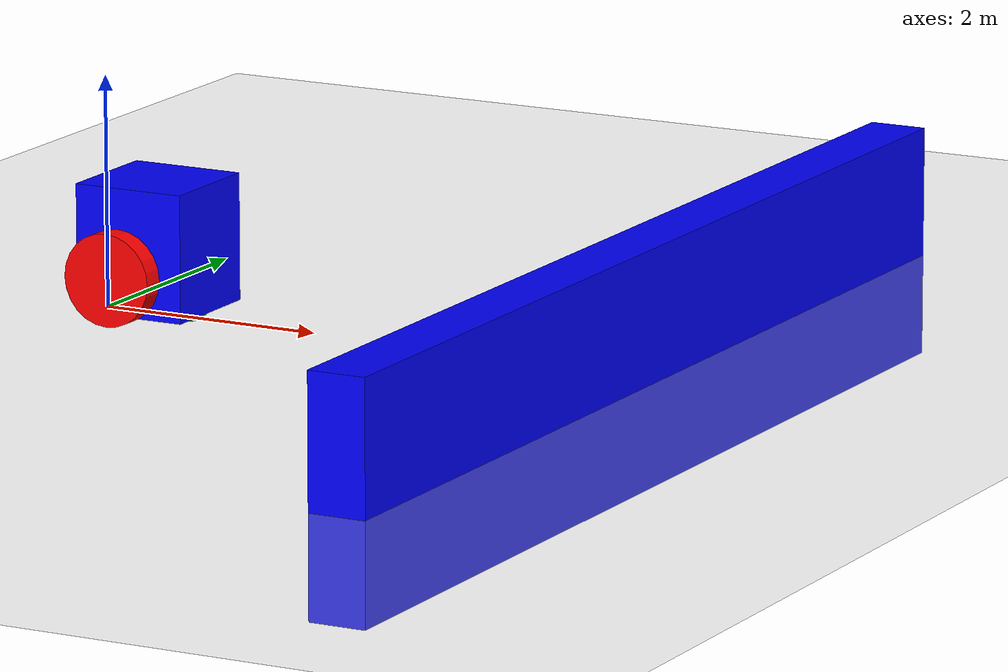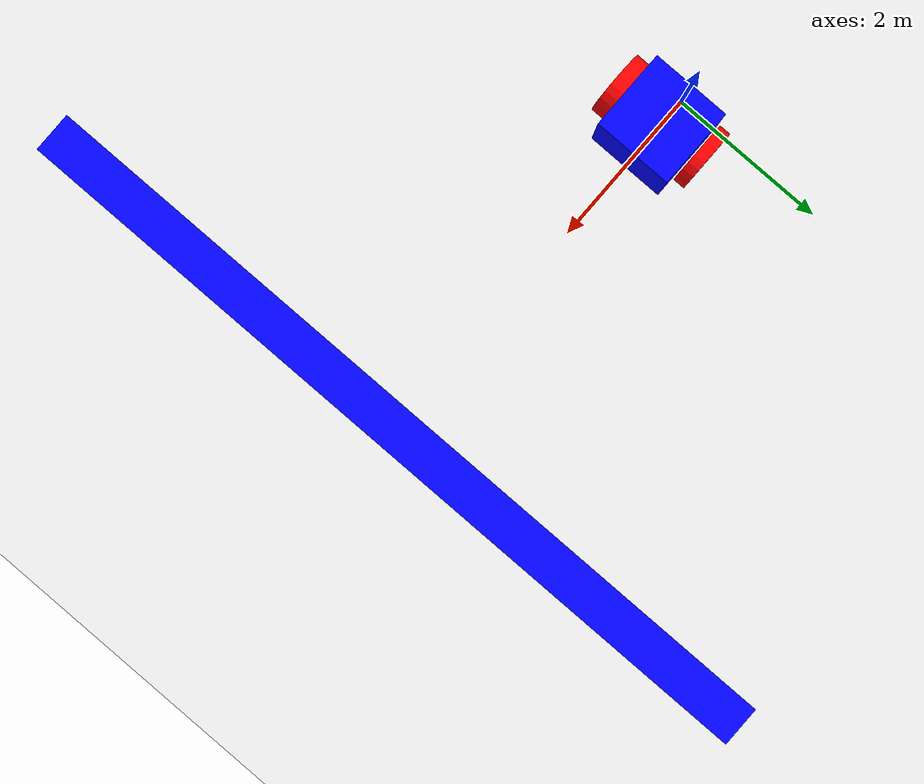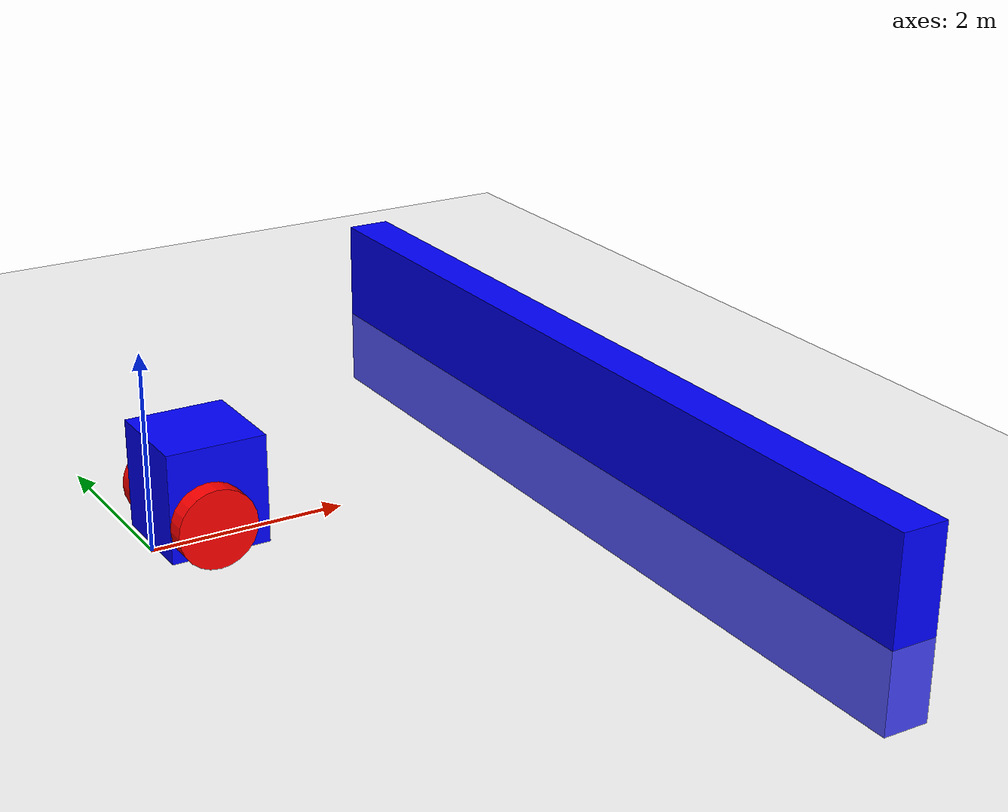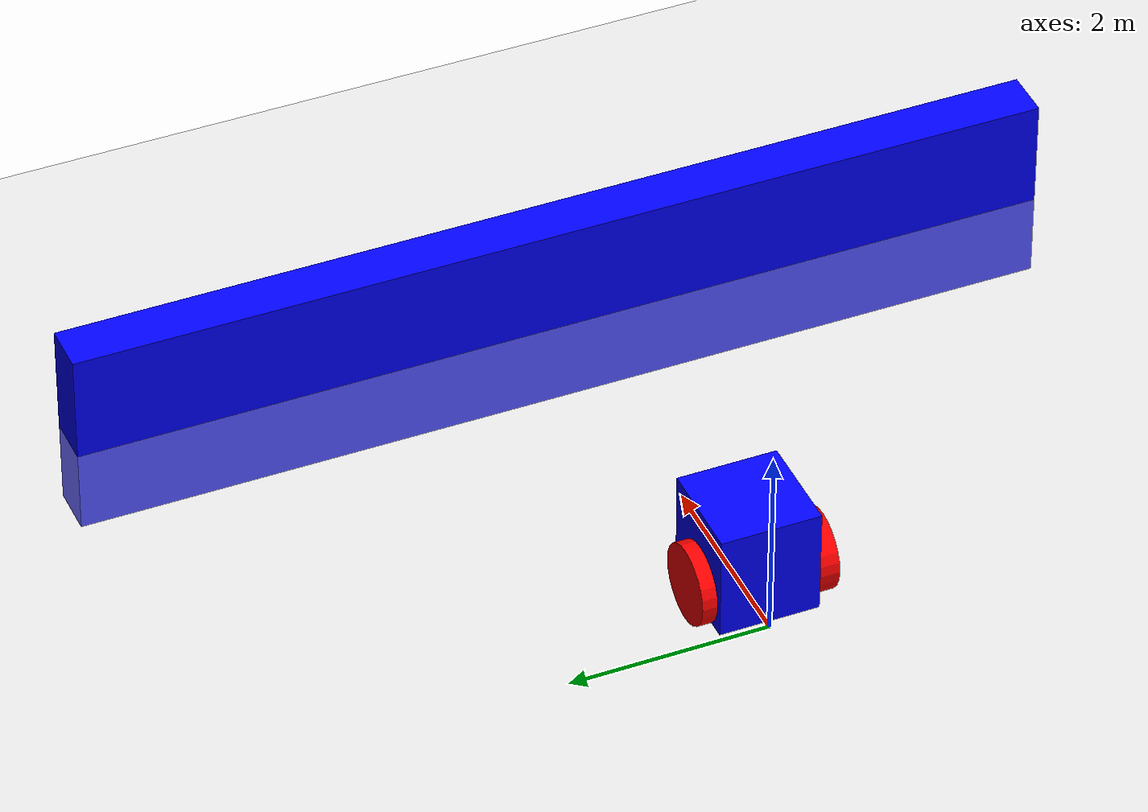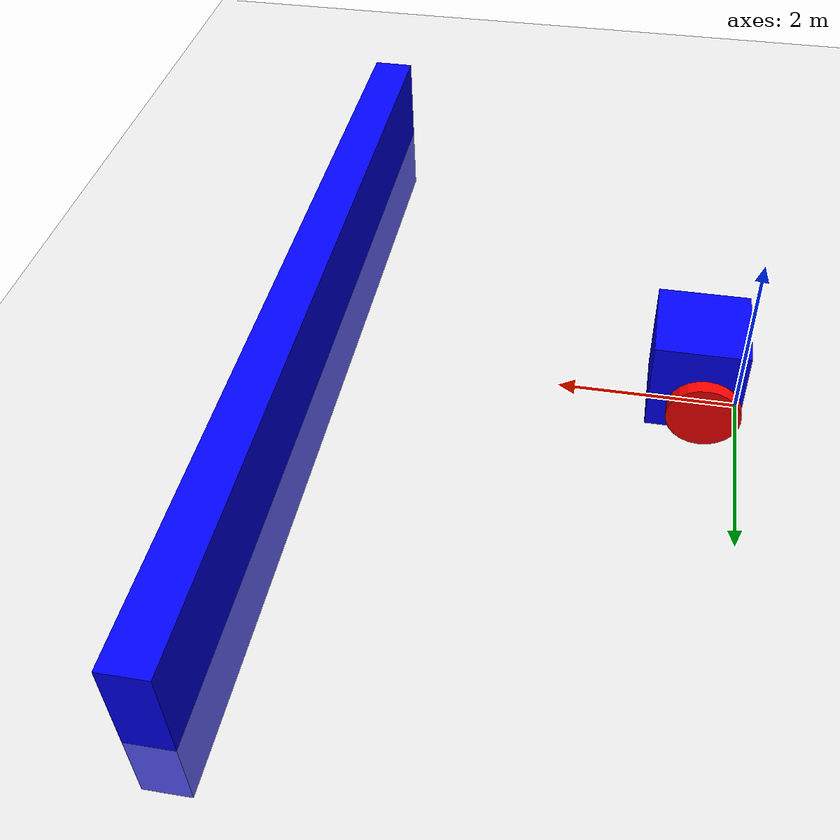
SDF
<?xml version="1.0" ?>
<sdf version="1.8">
    <world name="car_world">
        <physics name="1ms" type="ignored">
            <max_step_size>0.001</max_step_size>
            <real_time_factor>1.0</real_time_factor>
        </physics>
        <plugin
            filename="libignition-gazebo-physics-system.so"
            name="ignition::gazebo::systems::Physics">
        </plugin>
        <plugin
            filename="libignition-gazebo-user-commands-system.so"
            name="ignition::gazebo::systems::UserCommands">
        </plugin>
        <plugin
            filename="libignition-gazebo-scene-broadcaster-system.so"
            name="ignition::gazebo::systems::SceneBroadcaster">
        </plugin>
        <plugin
        filename="libignition-gazebo-sensors-system.so"
        name="ignition::gazebo::systems::Sensors">
        <render_engine>ogre2</render_engine>
      </plugin>

        <light type="directional" name="sun">
            <cast_shadows>true</cast_shadows>
            <pose>0 0 10 0 0 0</pose>
            <diffuse>0.8 0.8 0.8 1</diffuse>
            <specular>0.2 0.2 0.2 1</specular>
            <attenuation>
                <range>1000</range>
                <constant>0.9</constant>
                <linear>0.01</linear>
                <quadratic>0.001</quadratic>
            </attenuation>
            <direction>-0.5 0.1 -0.9</direction>
        </light>

        <model name="ground_plane">
            <static>true</static>
            <link name="link">
                <collision name="collision">
                <geometry>
                    <plane>
                    <normal>0 0 1</normal>
                    </plane>
                </geometry>
                </collision>
                <visual name="visual">
                <geometry>
                    <plane>
                    <normal>0 0 1</normal>
                    <size>100 100</size>
                    </plane>
                </geometry>
                <material>
                    <ambient>0.8 0.8 0.8 1</ambient>
                    <diffuse>0.8 0.8 0.8 1</diffuse>
                    <specular>0.8 0.8 0.8 1</specular>
                </material>
                </visual>
            </link>
        </model>

        <model name='vehicle_blue' canonical_link='chassis'>
            <pose relative_to='world'>0 0 .12 0 0 0</pose>   <!--the pose is relative to the world by default-->

            <frame name="lidar_frame" attached_to='chassis'>
                <pose>0.8 0 0.5 0 0 0</pose>
            </frame>

            <!--chassis-->
            <link name='chassis'>
                <pose relative_to='__model__'>0.5 0 0.5 0 0 0</pose>
                <inertial> <!--inertial properties of the link mass, inertia matix-->
                    <mass>1.14395</mass>
                    <inertia>
                        <ixx>0.095329</ixx>
                        <ixy>0</ixy>
                        <ixz>0</ixz>
                        <iyy>0.381317</iyy>
                        <iyz>0</iyz>
                        <izz>0.476646</izz>
                    </inertia>
                </inertial>
                <visual name='visual'>
                    <geometry>
                        <box>
                        <size>1.0 1.0 1.1</size>

                        </box>
                    </geometry>
                    <!--Color of the link-->
                    <material>
                        <ambient>0.0 0.0 1.0 1</ambient>
                        <diffuse>0.0 0.0 1.0 1</diffuse>
                        <specular>0.0 0.0 1.0 1</specular>
                    </material>
                </visual>
                <collision name='collision'>
                    <geometry>
                        <box>
                            <size>2.0 1.0 0.5</size>
                        </box>
                    </geometry>
                </collision>
                 <!--IMU-->
                <sensor name="imu_sensor" type="imu">
                    <always_on>1</always_on>
                    <update_rate>1</update_rate>
                    <visualize>true</visualize>
                    <topic>imu</topic>
                </sensor>
                 <!--LiDAR-->
                <sensor name='gpu_lidar' type='gpu_lidar'>"
                    <pose relative_to='lidar_frame'>0 0 0 0 0 0</pose>
                    <topic>lidar</topic>
                    <update_rate>10</update_rate>
                    <ray>
                    <scan>
                        <horizontal>
                        <samples>640</samples>
                        <resolution>1</resolution>
                        <min_angle>-1.396263</min_angle>
                        <max_angle>1.396263</max_angle>
                        </horizontal>
                        <vertical>
                        <samples>1</samples>
                        <resolution>0.01</resolution>
                        <min_angle>0</min_angle>
                        <max_angle>0</max_angle>
                        </vertical>
                    </scan>
                    <range>
                        <min>0.08</min>
                        <max>10.0</max>
                        <resolution>0.01</resolution>
                    </range>
                    </ray>
                    <alwaysOn>1</alwaysOn>
                    <visualize>true</visualize>
                </sensor>
            </link>

            <!--Left wheel-->
            <link name='left_wheel'>
                <pose relative_to="chassis">-0.1 0.6 -.2 -1.5707 0 0</pose> <!--angles are in radian-->
                <inertial>
                    <mass>1</mass>
                    <inertia>
                        <ixx>0.043333</ixx>
                        <ixy>0</ixy>
                        <ixz>0</ixz>
                        <iyy>0.043333</iyy>
                        <iyz>0</iyz>
                        <izz>0.08</izz>
                    </inertia>
                </inertial>
                <visual name='visual'>
                    <geometry>
                        <cylinder>
                            <radius>0.4</radius>
                            <length>0.15</length>
                        </cylinder>
                    </geometry>
                    <material>
                        <ambient>1.0 0.0 0.0 1</ambient>
                        <diffuse>1.0 0.0 0.0 1</diffuse>
                        <specular>1.0 0.0 0.0 1</specular>
                    </material>
                </visual>
                <collision name='collision'>
                    <geometry>
                        <cylinder>
                            <radius>0.4</radius>
                            <length>0.2</length>
                        </cylinder>
                    </geometry>
                </collision>
            </link>

            <!--The same as left wheel but with different position-->
            <link name='right_wheel'>
                <pose relative_to="chassis">-0.1 -0.6 -.2 -1.5707 0 0</pose> <!--angles are in radian-->
                <inertial>
                    <mass>1</mass>
                    <inertia>
                        <ixx>0.043333</ixx>
                        <ixy>0</ixy>
                        <ixz>0</ixz>
                        <iyy>0.043333</iyy>
                        <iyz>0</iyz>
                        <izz>0.08</izz>
                    </inertia>
                </inertial>
                <visual name='visual'>
                    <geometry>
                        <cylinder>
                            <radius>0.4</radius>
                            <length>0.2</length>
                        </cylinder>
                    </geometry>
                    <material>
                        <ambient>1.0 0.0 0.0 1</ambient>
                        <diffuse>1.0 0.0 0.0 1</diffuse>
                        <specular>1.0 0.0 0.0 1</specular>
                    </material>
                </visual>
                <collision name='collision'>
                    <geometry>
                        <cylinder>
                            <radius>0.4</radius>
                            <length>0.2</length>
                        </cylinder>
                    </geometry>
                </collision>
            </link>

            <!--arbitrary frame-->
            <frame name="caster_frame" attached_to='chassis'>
                <pose>0.30 0 -.448 0 0 0</pose>
            </frame>

            <!--caster wheel-->
            <link name='caster'>
                <pose relative_to='caster_frame'/>
                <inertial>
                    <mass>1</mass>
                    <inertia>
                        <ixx>0.016</ixx>
                        <ixy>0</ixy>
                        <ixz>0</ixz>
                        <iyy>0.016</iyy>
                        <iyz>0</iyz>
                        <izz>0.016</izz>
                    </inertia>
                </inertial>
                <visual name='visual'>
                    <geometry>
                        <sphere>
                            <radius>0.2</radius>
                        </sphere>
                    </geometry>
                    <material>
                        <ambient>0.0 1 0.0 1</ambient>
                        <diffuse>0.0 1 0.0 1</diffuse>
                        <specular>0.0 1 0.0 1</specular>
                    </material>
                </visual>
                <collision name='collision'>
                    <geometry>
                        <sphere>
                            <radius>0.15</radius>
                        </sphere>
                    </geometry>
                </collision>
            </link>

            <!--left wheel joint-->
            <joint name='left_wheel_joint' type='revolute'>
                <pose relative_to='left_wheel'/>
                <parent>chassis</parent>
                <child>left_wheel</child>
                <axis>
                    <xyz expressed_in='__model__'>0 1 0</xyz> <!--can be descired to any frame or even arbitrary frames-->
                    <limit>
                        <lower>-1.79769e+308</lower>    <!--negative infinity-->
                        <upper>1.79769e+308</upper>     <!--positive infinity-->
                    </limit>
                </axis>
            </joint>

            <!--right wheel joint-->
            <joint name='right_wheel_joint' type='revolute'>
                <pose relative_to='right_wheel'/>
                <parent>chassis</parent>
                <child>right_wheel</child>
                <axis>
                    <xyz expressed_in='__model__'>0 1 0</xyz>
                    <limit>
                        <lower>-1.79769e+308</lower>    <!--negative infinity-->
                        <upper>1.79769e+308</upper>     <!--positive infinity-->
                    </limit>
                </axis>
            </joint>

            <!--caster wheel joint--> <!--pose defult value is the child-->
            <joint name='caster_wheel' type='ball'>
                <parent>chassis</parent>
                <child>caster</child>
            </joint>
   <!--diff drive plugin-->
   <plugin
   filename="libignition-gazebo-diff-drive-system.so"
   name="ignition::gazebo::systems::DiffDrive">
   <left_joint>left_wheel_joint</left_joint>
   <right_joint>right_wheel_joint</right_joint>
   <wheel_separation>1.2</wheel_separation>
   <wheel_radius>0.4</wheel_radius>
   <odom_publish_frequency>1</odom_publish_frequency>
   <topic>cmd_vel</topic>
</plugin>

 <!--wall-->
 <model name='wall'>
    <static>true</static>
    <pose>5 0 0 0 0 0</pose><!--pose relative to the world-->
    <link name='box'>
        <pose/>
        <inertial> <!--inertial properties of the link mass, inertia matix-->
            <mass>1.14395</mass>
            <inertia>
                <ixx>9.532917</ixx>
                <ixy>0</ixy>
                <ixz>0</ixz>
                <iyy>0.023832</iyy>
                <iyz>0</iyz>
                <izz>9.556749</izz>
            </inertia>
        </inertial>
        <visual name='visual'>
            <geometry>
                <box>
                    <size>0.5 10.0 2.0</size>
                </box>
            </geometry>
            <!--let's add color to our link-->
            <material>
                <ambient>0.0 0.0 1.0 1</ambient>
                <diffuse>0.0 0.0 1.0 1</diffuse>
                <specular>0.0 0.0 1.0 1</specular>
            </material>
        </visual>
        <collision name='collision'> <!--todo: describe why we need the collision-->
            <geometry>
                <box>
                    <size>0.5 10.0 2.0</size>
                </box>
            </geometry>
        </collision>
        <sensor name='sensor_contact' type='contact'>
            <contact>
                <collision>collision</collision>
            </contact>
        </sensor>
    </link>
    <plugin filename="ignition-gazebo-touchplugin-system"
            name="ignition::gazebo::systems::TouchPlugin">
        <target>vehicle_blue</target>
        <namespace>wall</namespace>
        <time>0.001</time>
        <enabled>true</enabled>
    </plugin>
</model>

        </model>

      <!-- Moving Forward-->
      <plugin filename="libignition-gazebo-triggered-publisher-system.so"
      name="ignition::gazebo::systems::TriggeredPublisher">
  <input type="ignition.msgs.Int32" topic="/keyboard/keypress">
      <match field="data">16777235</match>
  </input>
  <output type="ignition.msgs.Twist" topic="/cmd_vel">
      linear: {x: 0.5}, angular: {z: 0.0}
  </output>
</plugin>

<!-- Moving Backward-->
<plugin filename="libignition-gazebo-triggered-publisher-system.so"
      name="ignition::gazebo::systems::TriggeredPublisher">
  <input type="ignition.msgs.Int32" topic="/keyboard/keypress">
      <match field="data">16777237</match>
  </input>
  <output type="ignition.msgs.Twist" topic="/cmd_vel">
      linear: {x: -0.5}, angular: {z: 0.0}
  </output>
</plugin>

<!-- Rotating right-->
<plugin filename="libignition-gazebo-triggered-publisher-system.so"
      name="ignition::gazebo::systems::TriggeredPublisher">
  <input type="ignition.msgs.Int32" topic="/keyboard/keypress">
      <match field="data">16777236</match>
  </input>
  <output type="ignition.msgs.Twist" topic="/cmd_vel">
      linear: {x: 0.0}, angular: {z: -0.5}
  </output>
</plugin>

<!--Rotating left-->
<plugin filename="libignition-gazebo-triggered-publisher-system.so"
      name="ignition::gazebo::systems::TriggeredPublisher">
  <input type="ignition.msgs.Int32" topic="/keyboard/keypress">
      <match field="data">16777234</match>
  </input>
  <output type="ignition.msgs.Twist" topic="/cmd_vel">
      linear: {x: 0.0}, angular: {z: 0.5}
  </output>
</plugin>

 <!--stop when hit the wall-->
 <plugin filename="ignition-gazebo-triggered-publisher-system"
 name="ignition::gazebo::systems::TriggeredPublisher">
<input type="ignition.msgs.Boolean" topic="/wall/touched">
 <match>data: true</match>
</input>
<output type="ignition.msgs.Twist" topic="/cmd_vel">
 linear: {x: 0.0}, angular: {z: 0.0}
</output>
</plugin>

    </world>
</sdf>
